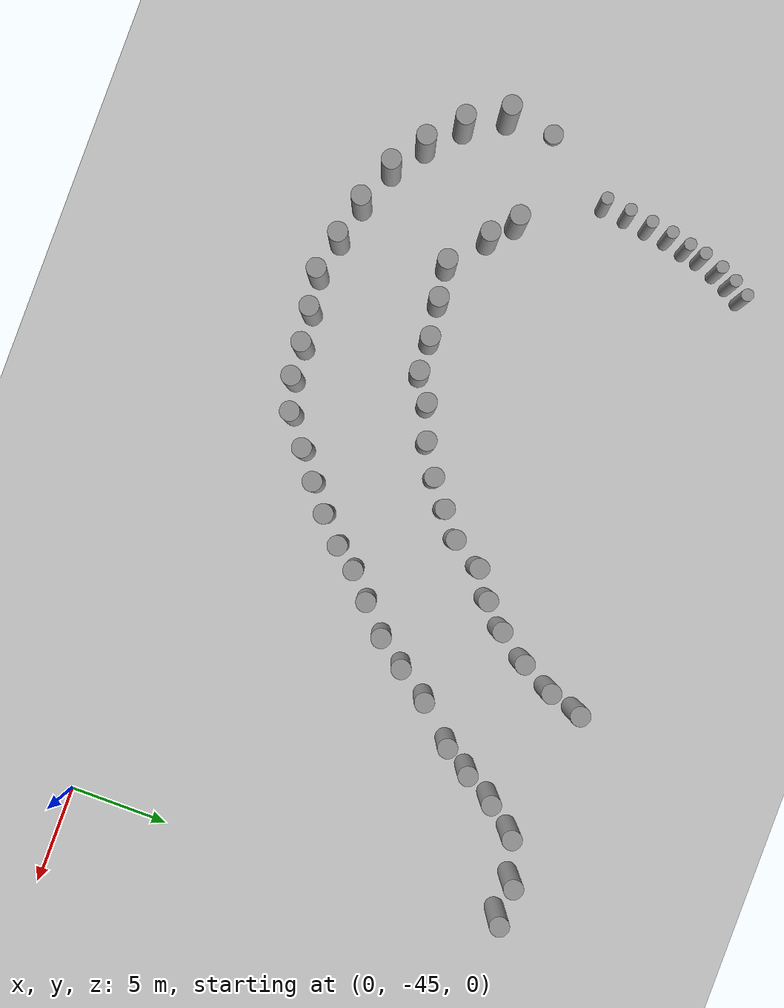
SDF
<sdf version="1.7">
 <world name="default">
  <model name="ground_plane">
   <static>1</static>
   <link name="link">
    <collision name="collision">
     <geometry><plane><normal>0 0 1</normal><size>100 100</size></plane></geometry>
     <surface>
      <contact><collide_bitmask>65535</collide_bitmask></contact>
      <friction><ode><mu>100</mu><mu2>50</mu2></ode></friction>
     </surface>
    </collision>
    <visual name="visual">
     <cast_shadows>0</cast_shadows>
     <geometry><plane><normal>0 0 1</normal><size>100 100</size></plane></geometry>
     <material>
      <script><uri>file://media/materials/scripts/gazebo.material</uri><name>Gazebo/Grey</name></script>
     </material>
    </visual>
   </link>
  </model>
  <model name="unit_cylinder">
   <pose>-39.2193 -33.7242 0.146396 0 -0 0</pose>
   <link name="link">
    <inertial>
     <mass>1</mass>
     <inertia><ixx>0.145833</ixx><ixy>0</ixy><ixz>0</ixz><iyy>0.145833</iyy><iyz>0</iyz><izz>0.125</izz></inertia>
    </inertial>
    <collision name="collision">
     <geometry><cylinder><radius>0.5</radius><length>0.292792</length></cylinder></geometry>
    </collision>
    <visual name="visual">
     <geometry><cylinder><radius>0.5</radius><length>0.292792</length></cylinder></geometry>
     <material>
      <script><name>Gazebo/Grey</name><uri>file://media/materials/scripts/gazebo.material</uri></script>
     </material>
    </visual>
   </link>
  </model>
  <model name="unit_cylinder_clone">
   <pose>-34.1012 -33.9397 1.7077 0 -0 -2.2e-05</pose>
   <link name="link">
    <inertial>
     <mass>1</mass>
     <inertia><ixx>0.145833</ixx><ixy>0</ixy><ixz>0</ixz><iyy>0.145833</iyy><iyz>0</iyz><izz>0.125</izz></inertia>
    </inertial>
    <collision name="collision">
     <geometry><cylinder><radius>0.5</radius><length>3.4154</length></cylinder></geometry>
    </collision>
    <visual name="visual">
     <geometry><cylinder><radius>0.5</radius><length>3.4154</length></cylinder></geometry>
     <material>
      <script><name>Gazebo/Grey</name><uri>file://media/materials/scripts/gazebo.material</uri></script>
     </material>
    </visual>
   </link>
  </model>
  <model name="unit_cylinder_clone_0">
   <pose>-38.9005 -36.1347 1.7077 0 -0 -3.1e-05</pose>
   <link name="link">
    <inertial>
     <mass>1</mass>
     <inertia><ixx>0.145833</ixx><ixy>0</ixy><ixz>0</ixz><iyy>0.145833</iyy><iyz>0</iyz><izz>0.125</izz></inertia>
    </inertial>
    <collision name="collision">
     <geometry><cylinder><radius>0.5</radius><length>3.4154</length></cylinder></geometry>
    </collision>
    <visual name="visual">
     <geometry><cylinder><radius>0.5</radius><length>3.4154</length></cylinder></geometry>
     <material>
      <script><name>Gazebo/Grey</name><uri>file://media/materials/scripts/gazebo.material</uri></script>
     </material>
    </visual>
   </link>
  </model>
  <model name="unit_cylinder_clone_0_clone">
   <pose>-37.7006 -38.0418 1.7077 0 -0 -3.1e-05</pose>
   <link name="link">
    <inertial>
     <mass>1</mass>
     <inertia><ixx>0.145833</ixx><ixy>0</ixy><ixz>0</ixz><iyy>0.145833</iyy><iyz>0</iyz><izz>0.125</izz></inertia>
    </inertial>
    <collision name="collision">
     <geometry><cylinder><radius>0.5</radius><length>3.4154</length></cylinder></geometry>
    </collision>
    <visual name="visual">
     <geometry><cylinder><radius>0.5</radius><length>3.4154</length></cylinder></geometry>
     <material>
      <script><name>Gazebo/Grey</name><uri>file://media/materials/scripts/gazebo.material</uri></script>
     </material>
    </visual>
   </link>
  </model>
  <model name="unit_cylinder_clone_0_clone_0">
   <pose>-36.1409 -39.4786 1.7077 0 -0 -1.9e-05</pose>
   <link name="link">
    <inertial>
     <mass>1</mass>
     <inertia><ixx>0.145833</ixx><ixy>0</ixy><ixz>0</ixz><iyy>0.145833</iyy><iyz>0</iyz><izz>0.125</izz></inertia>
    </inertial>
    <collision name="collision">
     <geometry><cylinder><radius>0.5</radius><length>3.4154</length></cylinder></geometry>
    </collision>
    <visual name="visual">
     <geometry><cylinder><radius>0.5</radius><length>3.4154</length></cylinder></geometry>
     <material>
      <script><name>Gazebo/Grey</name><uri>file://media/materials/scripts/gazebo.material</uri></script>
     </material>
    </visual>
   </link>
  </model>
  <model name="unit_cylinder_clone_0_clone_1">
   <pose>-32.8781 -34.9904 1.7077 0 -0 -1.7e-05</pose>
   <link name="link">
    <inertial>
     <mass>1</mass>
     <inertia><ixx>0.145833</ixx><ixy>0</ixy><ixz>0</ixz><iyy>0.145833</iyy><iyz>0</iyz><izz>0.125</izz></inertia>
    </inertial>
    <collision name="collision">
     <geometry><cylinder><radius>0.5</radius><length>3.4154</length></cylinder></geometry>
    </collision>
    <visual name="visual">
     <geometry><cylinder><radius>0.5</radius><length>3.4154</length></cylinder></geometry>
     <material>
      <script><name>Gazebo/Grey</name><uri>file://media/materials/scripts/gazebo.material</uri></script>
     </material>
    </visual>
   </link>
  </model>
  <model name="unit_cylinder_clone_0_clone_2">
   <pose>-30.9254 -36.4618 1.7077 0 -0 -3.1e-05</pose>
   <link name="link">
    <inertial>
     <mass>1</mass>
     <inertia><ixx>0.145833</ixx><ixy>0</ixy><ixz>0</ixz><iyy>0.145833</iyy><iyz>0</iyz><izz>0.125</izz></inertia>
    </inertial>
    <collision name="collision">
     <geometry><cylinder><radius>0.5</radius><length>3.4154</length></cylinder></geometry>
    </collision>
    <visual name="visual">
     <geometry><cylinder><radius>0.5</radius><length>3.4154</length></cylinder></geometry>
     <material>
      <script><name>Gazebo/Grey</name><uri>file://media/materials/scripts/gazebo.material</uri></script>
     </material>
    </visual>
   </link>
  </model>
  <model name="unit_cylinder_clone_0_clone_3">
   <pose>-34.4586 -40.6588 1.7077 0 -0 -2.2e-05</pose>
   <link name="link">
    <inertial>
     <mass>1</mass>
     <inertia><ixx>0.145833</ixx><ixy>0</ixy><ixz>0</ixz><iyy>0.145833</iyy><iyz>0</iyz><izz>0.125</izz></inertia>
    </inertial>
    <collision name="collision">
     <geometry><cylinder><radius>0.5</radius><length>3.4154</length></cylinder></geometry>
    </collision>
    <visual name="visual">
     <geometry><cylinder><radius>0.5</radius><length>3.4154</length></cylinder></geometry>
     <material>
      <script><name>Gazebo/Grey</name><uri>file://media/materials/scripts/gazebo.material</uri></script>
     </material>
    </visual>
   </link>
  </model>
  <model name="unit_cylinder_clone_0_clone_4">
   <pose>-32.3305 -41.4258 1.7077 0 -0 -2.3e-05</pose>
   <link name="link">
    <inertial>
     <mass>1</mass>
     <inertia><ixx>0.145833</ixx><ixy>0</ixy><ixz>0</ixz><iyy>0.145833</iyy><iyz>0</iyz><izz>0.125</izz></inertia>
    </inertial>
    <collision name="collision">
     <geometry><cylinder><radius>0.5</radius><length>3.4154</length></cylinder></geometry>
    </collision>
    <visual name="visual">
     <geometry><cylinder><radius>0.5</radius><length>3.4154</length></cylinder></geometry>
     <material>
      <script><name>Gazebo/Grey</name><uri>file://media/materials/scripts/gazebo.material</uri></script>
     </material>
    </visual>
   </link>
  </model>
  <model name="unit_cylinder_clone_0_clone_5">
   <pose>-30.3061 -41.8642 1.7077 0 -0 -1.5e-05</pose>
   <link name="link">
    <inertial>
     <mass>1</mass>
     <inertia><ixx>0.145833</ixx><ixy>0</ixy><ixz>0</ixz><iyy>0.145833</iyy><iyz>0</iyz><izz>0.125</izz></inertia>
    </inertial>
    <collision name="collision">
     <geometry><cylinder><radius>0.5</radius><length>3.4154</length></cylinder></geometry>
    </collision>
    <visual name="visual">
     <geometry><cylinder><radius>0.5</radius><length>3.4154</length></cylinder></geometry>
     <material>
      <script><name>Gazebo/Grey</name><uri>file://media/materials/scripts/gazebo.material</uri></script>
     </material>
    </visual>
   </link>
  </model>
  <model name="unit_cylinder_clone_0_clone_6">
   <pose>-29.0788 -36.2182 1.7077 0 -0 -1.5e-05</pose>
   <link name="link">
    <inertial>
     <mass>1</mass>
     <inertia><ixx>0.145833</ixx><ixy>0</ixy><ixz>0</ixz><iyy>0.145833</iyy><iyz>0</iyz><izz>0.125</izz></inertia>
    </inertial>
    <collision name="collision">
     <geometry><cylinder><radius>0.5</radius><length>3.4154</length></cylinder></geometry>
    </collision>
    <visual name="visual">
     <geometry><cylinder><radius>0.5</radius><length>3.4154</length></cylinder></geometry>
     <material>
      <script><name>Gazebo/Grey</name><uri>file://media/materials/scripts/gazebo.material</uri></script>
     </material>
    </visual>
   </link>
  </model>
  <model name="unit_cylinder_clone_0_clone_7">
   <pose>-27.1603 -35.9543 1.7077 0 -0 -1.5e-05</pose>
   <link name="link">
    <inertial>
     <mass>1</mass>
     <inertia><ixx>0.145833</ixx><ixy>0</ixy><ixz>0</ixz><iyy>0.145833</iyy><iyz>0</iyz><izz>0.125</izz></inertia>
    </inertial>
    <collision name="collision">
     <geometry><cylinder><radius>0.5</radius><length>3.4154</length></cylinder></geometry>
    </collision>
    <visual name="visual">
     <geometry><cylinder><radius>0.5</radius><length>3.4154</length></cylinder></geometry>
     <material>
      <script><name>Gazebo/Grey</name><uri>file://media/materials/scripts/gazebo.material</uri></script>
     </material>
    </visual>
   </link>
  </model>
  <model name="unit_cylinder_clone_0_clone_8">
   <pose>-28.3277 -42.2291 1.7077 0 -0 -1.5e-05</pose>
   <link name="link">
    <inertial>
     <mass>1</mass>
     <inertia><ixx>0.145833</ixx><ixy>0</ixy><ixz>0</ixz><iyy>0.145833</iyy><iyz>0</iyz><izz>0.125</izz></inertia>
    </inertial>
    <collision name="collision">
     <geometry><cylinder><radius>0.5</radius><length>3.4154</length></cylinder></geometry>
    </collision>
    <visual name="visual">
     <geometry><cylinder><radius>0.5</radius><length>3.4154</length></cylinder></geometry>
     <material>
      <script><name>Gazebo/Grey</name><uri>file://media/materials/scripts/gazebo.material</uri></script>
     </material>
    </visual>
   </link>
  </model>
  <model name="unit_cylinder_clone_0_clone_9">
   <pose>-26.4941 -41.9155 1.7077 0 -0 -3.1e-05</pose>
   <link name="link">
    <inertial>
     <mass>1</mass>
     <inertia><ixx>0.145833</ixx><ixy>0</ixy><ixz>0</ixz><iyy>0.145833</iyy><iyz>0</iyz><izz>0.125</izz></inertia>
    </inertial>
    <collision name="collision">
     <geometry><cylinder><radius>0.5</radius><length>3.4154</length></cylinder></geometry>
    </collision>
    <visual name="visual">
     <geometry><cylinder><radius>0.5</radius><length>3.4154</length></cylinder></geometry>
     <material>
      <script><name>Gazebo/Grey</name><uri>file://media/materials/scripts/gazebo.material</uri></script>
     </material>
    </visual>
   </link>
  </model>
  <model name="unit_cylinder_clone_0_clone_10">
   <pose>-25.4379 -35.8604 1.7077 0 -0 -1.5e-05</pose>
   <link name="link">
    <inertial>
     <mass>1</mass>
     <inertia><ixx>0.145833</ixx><ixy>0</ixy><ixz>0</ixz><iyy>0.145833</iyy><iyz>0</iyz><izz>0.125</izz></inertia>
    </inertial>
    <collision name="collision">
     <geometry><cylinder><radius>0.5</radius><length>3.4154</length></cylinder></geometry>
    </collision>
    <visual name="visual">
     <geometry><cylinder><radius>0.5</radius><length>3.4154</length></cylinder></geometry>
     <material>
      <script><name>Gazebo/Grey</name><uri>file://media/materials/scripts/gazebo.material</uri></script>
     </material>
    </visual>
   </link>
  </model>
  <model name="unit_cylinder_clone_0_clone_11">
   <pose>-24.7496 -41.6817 1.7077 0 -0 -1.5e-05</pose>
   <link name="link">
    <inertial>
     <mass>1</mass>
     <inertia><ixx>0.145833</ixx><ixy>0</ixy><ixz>0</ixz><iyy>0.145833</iyy><iyz>0</iyz><izz>0.125</izz></inertia>
    </inertial>
    <collision name="collision">
     <geometry><cylinder><radius>0.5</radius><length>3.4154</length></cylinder></geometry>
    </collision>
    <visual name="visual">
     <geometry><cylinder><radius>0.5</radius><length>3.4154</length></cylinder></geometry>
     <material>
      <script><name>Gazebo/Grey</name><uri>file://media/materials/scripts/gazebo.material</uri></script>
     </material>
    </visual>
   </link>
  </model>
  <model name="unit_cylinder_clone_0_clone_12">
   <pose>-24.1228 -34.9902 1.7077 0 -0 -3.1e-05</pose>
   <link name="link">
    <inertial>
     <mass>1</mass>
     <inertia><ixx>0.145833</ixx><ixy>0</ixy><ixz>0</ixz><iyy>0.145833</iyy><iyz>0</iyz><izz>0.125</izz></inertia>
    </inertial>
    <collision name="collision">
     <geometry><cylinder><radius>0.5</radius><length>3.4154</length></cylinder></geometry>
    </collision>
    <visual name="visual">
     <geometry><cylinder><radius>0.5</radius><length>3.4154</length></cylinder></geometry>
     <material>
      <script><name>Gazebo/Grey</name><uri>file://media/materials/scripts/gazebo.material</uri></script>
     </material>
    </visual>
   </link>
  </model>
  <model name="unit_cylinder_clone_0_clone_13">
   <pose>-23.0668 -41.5626 1.7077 0 -0 -1.5e-05</pose>
   <link name="link">
    <inertial>
     <mass>1</mass>
     <inertia><ixx>0.145833</ixx><ixy>0</ixy><ixz>0</ixz><iyy>0.145833</iyy><iyz>0</iyz><izz>0.125</izz></inertia>
    </inertial>
    <collision name="collision">
     <geometry><cylinder><radius>0.5</radius><length>3.4154</length></cylinder></geometry>
    </collision>
    <visual name="visual">
     <geometry><cylinder><radius>0.5</radius><length>3.4154</length></cylinder></geometry>
     <material>
      <script><name>Gazebo/Grey</name><uri>file://media/materials/scripts/gazebo.material</uri></script>
     </material>
    </visual>
   </link>
  </model>
  <model name="unit_cylinder_clone_0_clone_14">
   <pose>-21.4401 -41.0301 1.7077 0 -0 -1.5e-05</pose>
   <link name="link">
    <inertial>
     <mass>1</mass>
     <inertia><ixx>0.145833</ixx><ixy>0</ixy><ixz>0</ixz><iyy>0.145833</iyy><iyz>0</iyz><izz>0.125</izz></inertia>
    </inertial>
    <collision name="collision">
     <geometry><cylinder><radius>0.5</radius><length>3.4154</length></cylinder></geometry>
    </collision>
    <visual name="visual">
     <geometry><cylinder><radius>0.5</radius><length>3.4154</length></cylinder></geometry>
     <material>
      <script><name>Gazebo/Grey</name><uri>file://media/materials/scripts/gazebo.material</uri></script>
     </material>
    </visual>
   </link>
  </model>
  <model name="unit_cylinder_clone_0_clone_15">
   <pose>-22.3934 -34.3642 1.7077 0 -0 -1.5e-05</pose>
   <link name="link">
    <inertial>
     <mass>1</mass>
     <inertia><ixx>0.145833</ixx><ixy>0</ixy><ixz>0</ixz><iyy>0.145833</iyy><iyz>0</iyz><izz>0.125</izz></inertia>
    </inertial>
    <collision name="collision">
     <geometry><cylinder><radius>0.5</radius><length>3.4154</length></cylinder></geometry>
    </collision>
    <visual name="visual">
     <geometry><cylinder><radius>0.5</radius><length>3.4154</length></cylinder></geometry>
     <material>
      <script><name>Gazebo/Grey</name><uri>file://media/materials/scripts/gazebo.material</uri></script>
     </material>
    </visual>
   </link>
  </model>
  <model name="unit_cylinder_clone_0_clone_16">
   <pose>-19.9972 -39.8775 1.7077 0 -0 -1.5e-05</pose>
   <link name="link">
    <inertial>
     <mass>1</mass>
     <inertia><ixx>0.145833</ixx><ixy>0</ixy><ixz>0</ixz><iyy>0.145833</iyy><iyz>0</iyz><izz>0.125</izz></inertia>
    </inertial>
    <collision name="collision">
     <geometry><cylinder><radius>0.5</radius><length>3.4154</length></cylinder></geometry>
    </collision>
    <visual name="visual">
     <geometry><cylinder><radius>0.5</radius><length>3.4154</length></cylinder></geometry>
     <material>
      <script><name>Gazebo/Grey</name><uri>file://media/materials/scripts/gazebo.material</uri></script>
     </material>
    </visual>
   </link>
  </model>
  <model name="unit_cylinder_clone_0_clone_17">
   <pose>-18.657 -38.8392 1.7077 0 -0 -3.1e-05</pose>
   <link name="link">
    <inertial>
     <mass>1</mass>
     <inertia><ixx>0.145833</ixx><ixy>0</ixy><ixz>0</ixz><iyy>0.145833</iyy><iyz>0</iyz><izz>0.125</izz></inertia>
    </inertial>
    <collision name="collision">
     <geometry><cylinder><radius>0.5</radius><length>3.4154</length></cylinder></geometry>
    </collision>
    <visual name="visual">
     <geometry><cylinder><radius>0.5</radius><length>3.4154</length></cylinder></geometry>
     <material>
      <script><name>Gazebo/Grey</name><uri>file://media/materials/scripts/gazebo.material</uri></script>
     </material>
    </visual>
   </link>
  </model>
  <model name="unit_cylinder_clone_0_clone_18">
   <pose>-20.8912 -33.4203 1.7077 0 -0 -3.1e-05</pose>
   <link name="link">
    <inertial>
     <mass>1</mass>
     <inertia><ixx>0.145833</ixx><ixy>0</ixy><ixz>0</ixz><iyy>0.145833</iyy><iyz>0</iyz><izz>0.125</izz></inertia>
    </inertial>
    <collision name="collision">
     <geometry><cylinder><radius>0.5</radius><length>3.4154</length></cylinder></geometry>
    </collision>
    <visual name="visual">
     <geometry><cylinder><radius>0.5</radius><length>3.4154</length></cylinder></geometry>
     <material>
      <script><name>Gazebo/Grey</name><uri>file://media/materials/scripts/gazebo.material</uri></script>
     </material>
    </visual>
   </link>
  </model>
  <model name="unit_cylinder_clone_0_clone_19">
   <pose>-17.3958 -37.8043 1.7077 0 -0 -1.5e-05</pose>
   <link name="link">
    <inertial>
     <mass>1</mass>
     <inertia><ixx>0.145833</ixx><ixy>0</ixy><ixz>0</ixz><iyy>0.145833</iyy><iyz>0</iyz><izz>0.125</izz></inertia>
    </inertial>
    <collision name="collision">
     <geometry><cylinder><radius>0.5</radius><length>3.4154</length></cylinder></geometry>
    </collision>
    <visual name="visual">
     <geometry><cylinder><radius>0.5</radius><length>3.4154</length></cylinder></geometry>
     <material>
      <script><name>Gazebo/Grey</name><uri>file://media/materials/scripts/gazebo.material</uri></script>
     </material>
    </visual>
   </link>
  </model>
  <model name="unit_cylinder_clone_0_clone_20">
   <pose>-19.6384 -32.4055 1.7077 0 -0 -3e-05</pose>
   <link name="link">
    <inertial>
     <mass>1</mass>
     <inertia><ixx>0.145833</ixx><ixy>0</ixy><ixz>0</ixz><iyy>0.145833</iyy><iyz>0</iyz><izz>0.125</izz></inertia>
    </inertial>
    <collision name="collision">
     <geometry><cylinder><radius>0.5</radius><length>3.4154</length></cylinder></geometry>
    </collision>
    <visual name="visual">
     <geometry><cylinder><radius>0.5</radius><length>3.4154</length></cylinder></geometry>
     <material>
      <script><name>Gazebo/Grey</name><uri>file://media/materials/scripts/gazebo.material</uri></script>
     </material>
    </visual>
   </link>
  </model>
  <model name="unit_cylinder_clone_0_clone_21">
   <pose>-16.1906 -36.6426 1.7077 0 -0 -6e-06</pose>
   <link name="link">
    <inertial>
     <mass>1</mass>
     <inertia><ixx>0.145833</ixx><ixy>0</ixy><ixz>0</ixz><iyy>0.145833</iyy><iyz>0</iyz><izz>0.125</izz></inertia>
    </inertial>
    <collision name="collision">
     <geometry><cylinder><radius>0.5</radius><length>3.4154</length></cylinder></geometry>
    </collision>
    <visual name="visual">
     <geometry><cylinder><radius>0.5</radius><length>3.4154</length></cylinder></geometry>
     <material>
      <script><name>Gazebo/Grey</name><uri>file://media/materials/scripts/gazebo.material</uri></script>
     </material>
    </visual>
   </link>
  </model>
  <model name="unit_cylinder_clone_0_clone_22">
   <pose>-15.3446 -35.5243 1.7077 0 -0 -7e-06</pose>
   <link name="link">
    <inertial>
     <mass>1</mass>
     <inertia><ixx>0.145833</ixx><ixy>0</ixy><ixz>0</ixz><iyy>0.145833</iyy><iyz>0</iyz><izz>0.125</izz></inertia>
    </inertial>
    <collision name="collision">
     <geometry><cylinder><radius>0.5</radius><length>3.4154</length></cylinder></geometry>
    </collision>
    <visual name="visual">
     <geometry><cylinder><radius>0.5</radius><length>3.4154</length></cylinder></geometry>
     <material>
      <script><name>Gazebo/Grey</name><uri>file://media/materials/scripts/gazebo.material</uri></script>
     </material>
    </visual>
   </link>
  </model>
  <model name="unit_cylinder_clone_0_clone_23">
   <pose>-18.432 -31.4004 1.7077 0 -0 -3.5e-05</pose>
   <link name="link">
    <inertial>
     <mass>1</mass>
     <inertia><ixx>0.145833</ixx><ixy>0</ixy><ixz>0</ixz><iyy>0.145833</iyy><iyz>0</iyz><izz>0.125</izz></inertia>
    </inertial>
    <collision name="collision">
     <geometry><cylinder><radius>0.5</radius><length>3.4154</length></cylinder></geometry>
    </collision>
    <visual name="visual">
     <geometry><cylinder><radius>0.5</radius><length>3.4154</length></cylinder></geometry>
     <material>
      <script><name>Gazebo/Grey</name><uri>file://media/materials/scripts/gazebo.material</uri></script>
     </material>
    </visual>
   </link>
  </model>
  <model name="unit_cylinder_clone_0_clone_24">
   <pose>-17.5365 -29.8651 1.7077 0 -0 -3.5e-05</pose>
   <link name="link">
    <inertial>
     <mass>1</mass>
     <inertia><ixx>0.145833</ixx><ixy>0</ixy><ixz>0</ixz><iyy>0.145833</iyy><iyz>0</iyz><izz>0.125</izz></inertia>
    </inertial>
    <collision name="collision">
     <geometry><cylinder><radius>0.5</radius><length>3.4154</length></cylinder></geometry>
    </collision>
    <visual name="visual">
     <geometry><cylinder><radius>0.5</radius><length>3.4154</length></cylinder></geometry>
     <material>
      <script><name>Gazebo/Grey</name><uri>file://media/materials/scripts/gazebo.material</uri></script>
     </material>
    </visual>
   </link>
  </model>
  <model name="unit_cylinder_clone_0_clone_25">
   <pose>-14.135 -34.4155 1.7077 0 -0 -1.8e-05</pose>
   <link name="link">
    <inertial>
     <mass>1</mass>
     <inertia><ixx>0.145833</ixx><ixy>0</ixy><ixz>0</ixz><iyy>0.145833</iyy><iyz>0</iyz><izz>0.125</izz></inertia>
    </inertial>
    <collision name="collision">
     <geometry><cylinder><radius>0.5</radius><length>3.4154</length></cylinder></geometry>
    </collision>
    <visual name="visual">
     <geometry><cylinder><radius>0.5</radius><length>3.4154</length></cylinder></geometry>
     <material>
      <script><name>Gazebo/Grey</name><uri>file://media/materials/scripts/gazebo.material</uri></script>
     </material>
    </visual>
   </link>
  </model>
  <model name="unit_cylinder_clone_0_clone_26">
   <pose>-12.7615 -33.134 1.7077 0 -0 -1.8e-05</pose>
   <link name="link">
    <inertial>
     <mass>1</mass>
     <inertia><ixx>0.145833</ixx><ixy>0</ixy><ixz>0</ixz><iyy>0.145833</iyy><iyz>0</iyz><izz>0.125</izz></inertia>
    </inertial>
    <collision name="collision">
     <geometry><cylinder><radius>0.5</radius><length>3.4154</length></cylinder></geometry>
    </collision>
    <visual name="visual">
     <geometry><cylinder><radius>0.5</radius><length>3.4154</length></cylinder></geometry>
     <material>
      <script><name>Gazebo/Grey</name><uri>file://media/materials/scripts/gazebo.material</uri></script>
     </material>
    </visual>
   </link>
  </model>
  <model name="unit_cylinder_clone_0_clone_27">
   <pose>-11.7056 -31.7164 1.7077 0 -0 -1.1e-05</pose>
   <link name="link">
    <inertial>
     <mass>1</mass>
     <inertia><ixx>0.145833</ixx><ixy>0</ixy><ixz>0</ixz><iyy>0.145833</iyy><iyz>0</iyz><izz>0.125</izz></inertia>
    </inertial>
    <collision name="collision">
     <geometry><cylinder><radius>0.5</radius><length>3.4154</length></cylinder></geometry>
    </collision>
    <visual name="visual">
     <geometry><cylinder><radius>0.5</radius><length>3.4154</length></cylinder></geometry>
     <material>
      <script><name>Gazebo/Grey</name><uri>file://media/materials/scripts/gazebo.material</uri></script>
     </material>
    </visual>
   </link>
  </model>
  <model name="unit_cylinder_clone_0_clone_28">
   <pose>-10.5947 -30.1055 1.7077 0 -0 -2.6e-05</pose>
   <link name="link">
    <inertial>
     <mass>1</mass>
     <inertia><ixx>0.145833</ixx><ixy>0</ixy><ixz>0</ixz><iyy>0.145833</iyy><iyz>0</iyz><izz>0.125</izz></inertia>
    </inertial>
    <collision name="collision">
     <geometry><cylinder><radius>0.5</radius><length>3.4154</length></cylinder></geometry>
    </collision>
    <visual name="visual">
     <geometry><cylinder><radius>0.5</radius><length>3.4154</length></cylinder></geometry>
     <material>
      <script><name>Gazebo/Grey</name><uri>file://media/materials/scripts/gazebo.material</uri></script>
     </material>
    </visual>
   </link>
  </model>
  <model name="unit_cylinder_clone_0_clone_29">
   <pose>-8.92083 -28.3016 1.7077 0 -0 -7e-06</pose>
   <link name="link">
    <inertial>
     <mass>1</mass>
     <inertia><ixx>0.145833</ixx><ixy>0</ixy><ixz>0</ixz><iyy>0.145833</iyy><iyz>0</iyz><izz>0.125</izz></inertia>
    </inertial>
    <collision name="collision">
     <geometry><cylinder><radius>0.5</radius><length>3.4154</length></cylinder></geometry>
    </collision>
    <visual name="visual">
     <geometry><cylinder><radius>0.5</radius><length>3.4154</length></cylinder></geometry>
     <material>
      <script><name>Gazebo/Grey</name><uri>file://media/materials/scripts/gazebo.material</uri></script>
     </material>
    </visual>
   </link>
  </model>
  <model name="unit_cylinder_clone_0_clone_30">
   <pose>-16.2133 -28.921 1.7077 0 -0 -9e-06</pose>
   <link name="link">
    <inertial>
     <mass>1</mass>
     <inertia><ixx>0.145833</ixx><ixy>0</ixy><ixz>0</ixz><iyy>0.145833</iyy><iyz>0</iyz><izz>0.125</izz></inertia>
    </inertial>
    <collision name="collision">
     <geometry><cylinder><radius>0.5</radius><length>3.4154</length></cylinder></geometry>
    </collision>
    <visual name="visual">
     <geometry><cylinder><radius>0.5</radius><length>3.4154</length></cylinder></geometry>
     <material>
      <script><name>Gazebo/Grey</name><uri>file://media/materials/scripts/gazebo.material</uri></script>
     </material>
    </visual>
   </link>
  </model>
  <model name="unit_cylinder_clone_0_clone_31">
   <pose>-15.0737 -27.7686 1.7077 0 -0 -7e-06</pose>
   <link name="link">
    <inertial>
     <mass>1</mass>
     <inertia><ixx>0.145833</ixx><ixy>0</ixy><ixz>0</ixz><iyy>0.145833</iyy><iyz>0</iyz><izz>0.125</izz></inertia>
    </inertial>
    <collision name="collision">
     <geometry><cylinder><radius>0.5</radius><length>3.4154</length></cylinder></geometry>
    </collision>
    <visual name="visual">
     <geometry><cylinder><radius>0.5</radius><length>3.4154</length></cylinder></geometry>
     <material>
      <script><name>Gazebo/Grey</name><uri>file://media/materials/scripts/gazebo.material</uri></script>
     </material>
    </visual>
   </link>
  </model>
  <model name="unit_cylinder_clone_0_clone_32">
   <pose>-13.9781 -26.2226 1.7077 0 -0 -7e-06</pose>
   <link name="link">
    <inertial>
     <mass>1</mass>
     <inertia><ixx>0.145833</ixx><ixy>0</ixy><ixz>0</ixz><iyy>0.145833</iyy><iyz>0</iyz><izz>0.125</izz></inertia>
    </inertial>
    <collision name="collision">
     <geometry><cylinder><radius>0.5</radius><length>3.4154</length></cylinder></geometry>
    </collision>
    <visual name="visual">
     <geometry><cylinder><radius>0.5</radius><length>3.4154</length></cylinder></geometry>
     <material>
      <script><name>Gazebo/Grey</name><uri>file://media/materials/scripts/gazebo.material</uri></script>
     </material>
    </visual>
   </link>
  </model>
  <model name="unit_cylinder_clone_0_clone_33">
   <pose>-13.1083 -24.5379 1.7077 0 -0 -2.6e-05</pose>
   <link name="link">
    <inertial>
     <mass>1</mass>
     <inertia><ixx>0.145833</ixx><ixy>0</ixy><ixz>0</ixz><iyy>0.145833</iyy><iyz>0</iyz><izz>0.125</izz></inertia>
    </inertial>
    <collision name="collision">
     <geometry><cylinder><radius>0.5</radius><length>3.4154</length></cylinder></geometry>
    </collision>
    <visual name="visual">
     <geometry><cylinder><radius>0.5</radius><length>3.4154</length></cylinder></geometry>
     <material>
      <script><name>Gazebo/Grey</name><uri>file://media/materials/scripts/gazebo.material</uri></script>
     </material>
    </visual>
   </link>
  </model>
  <model name="unit_cylinder_clone_0_clone_34">
   <pose>-12.5767 -22.8633 1.7077 -0 -0 -0.001813</pose>
   <link name="link">
    <inertial>
     <mass>1</mass>
     <inertia><ixx>0.145833</ixx><ixy>0</ixy><ixz>0</ixz><iyy>0.145833</iyy><iyz>0</iyz><izz>0.125</izz></inertia>
    </inertial>
    <collision name="collision">
     <geometry><cylinder><radius>0.5</radius><length>3.4154</length></cylinder></geometry>
    </collision>
    <visual name="visual">
     <geometry><cylinder><radius>0.5</radius><length>3.4154</length></cylinder></geometry>
     <material>
      <script><name>Gazebo/Grey</name><uri>file://media/materials/scripts/gazebo.material</uri></script>
     </material>
    </visual>
   </link>
  </model>
  <model name="unit_cylinder_clone_0_clone_35">
   <pose>-8.01693 -26.923 1.7077 0 -0 -1.7e-05</pose>
   <link name="link">
    <inertial>
     <mass>1</mass>
     <inertia><ixx>0.145833</ixx><ixy>0</ixy><ixz>0</ixz><iyy>0.145833</iyy><iyz>0</iyz><izz>0.125</izz></inertia>
    </inertial>
    <collision name="collision">
     <geometry><cylinder><radius>0.5</radius><length>3.4154</length></cylinder></geometry>
    </collision>
    <visual name="visual">
     <geometry><cylinder><radius>0.5</radius><length>3.4154</length></cylinder></geometry>
     <material>
      <script><name>Gazebo/Grey</name><uri>file://media/materials/scripts/gazebo.material</uri></script>
     </material>
    </visual>
   </link>
  </model>
  <model name="unit_cylinder_clone_0_clone_36">
   <pose>-7.09433 -25.3866 1.7077 0 -0 -2.3e-05</pose>
   <link name="link">
    <inertial>
     <mass>1</mass>
     <inertia><ixx>0.145833</ixx><ixy>0</ixy><ixz>0</ixz><iyy>0.145833</iyy><iyz>0</iyz><izz>0.125</izz></inertia>
    </inertial>
    <collision name="collision">
     <geometry><cylinder><radius>0.5</radius><length>3.4154</length></cylinder></geometry>
    </collision>
    <visual name="visual">
     <geometry><cylinder><radius>0.5</radius><length>3.4154</length></cylinder></geometry>
     <material>
      <script><name>Gazebo/Grey</name><uri>file://media/materials/scripts/gazebo.material</uri></script>
     </material>
    </visual>
   </link>
  </model>
  <model name="unit_cylinder_clone_0_clone_38">
   <pose>-5.87449 -23.8777 1.7077 0 -0 -2.3e-05</pose>
   <link name="link">
    <inertial>
     <mass>1</mass>
     <inertia><ixx>0.145833</ixx><ixy>0</ixy><ixz>0</ixz><iyy>0.145833</iyy><iyz>0</iyz><izz>0.125</izz></inertia>
    </inertial>
    <collision name="collision">
     <geometry><cylinder><radius>0.5</radius><length>3.4154</length></cylinder></geometry>
    </collision>
    <visual name="visual">
     <geometry><cylinder><radius>0.5</radius><length>3.4154</length></cylinder></geometry>
     <material>
      <script><name>Gazebo/Grey</name><uri>file://media/materials/scripts/gazebo.material</uri></script>
     </material>
    </visual>
   </link>
  </model>
  <model name="unit_cylinder_clone_0_clone_40">
   <pose>-3.69067 -22.991 1.7077 0 -0 -3.5e-05</pose>
   <link name="link">
    <inertial>
     <mass>1</mass>
     <inertia><ixx>0.145833</ixx><ixy>0</ixy><ixz>0</ixz><iyy>0.145833</iyy><iyz>0</iyz><izz>0.125</izz></inertia>
    </inertial>
    <collision name="collision">
     <geometry><cylinder><radius>0.5</radius><length>3.4154</length></cylinder></geometry>
    </collision>
    <visual name="visual">
     <geometry><cylinder><radius>0.5</radius><length>3.4154</length></cylinder></geometry>
     <material>
      <script><name>Gazebo/Grey</name><uri>file://media/materials/scripts/gazebo.material</uri></script>
     </material>
    </visual>
   </link>
  </model>
  <model name="unit_cylinder_clone_0_clone_41">
   <pose>-1.78617 -23.0066 1.7077 0 -0 -1.1e-05</pose>
   <link name="link">
    <inertial>
     <mass>1</mass>
     <inertia><ixx>0.145833</ixx><ixy>0</ixy><ixz>0</ixz><iyy>0.145833</iyy><iyz>0</iyz><izz>0.125</izz></inertia>
    </inertial>
    <collision name="collision">
     <geometry><cylinder><radius>0.5</radius><length>3.4154</length></cylinder></geometry>
    </collision>
    <visual name="visual">
     <geometry><cylinder><radius>0.5</radius><length>3.4154</length></cylinder></geometry>
     <material>
      <script><name>Gazebo/Grey</name><uri>file://media/materials/scripts/gazebo.material</uri></script>
     </material>
    </visual>
   </link>
  </model>
  <model name="unit_cylinder_0_clone_18">
   <pose>-34.4501 -22.2126 1.36387 0.035053 -0.003363 -0.057875</pose>
   <link name="link">
    <inertial>
     <mass>1</mass>
     <inertia><ixx>0.145833</ixx><ixy>0</ixy><ixz>0</ixz><iyy>0.145833</iyy><iyz>0</iyz><izz>0.125</izz></inertia>
    </inertial>
    <collision name="collision">
     <geometry><cylinder><radius>0.312533</radius><length>2.71094</length></cylinder></geometry>
    </collision>
    <visual name="visual">
     <geometry><cylinder><radius>0.312533</radius><length>2.71094</length></cylinder></geometry>
     <material>
      <script><name>Gazebo/Grey</name><uri>file://media/materials/scripts/gazebo.material</uri></script>
     </material>
    </visual>
   </link>
  </model>
  <model name="unit_cylinder_0_clone_19">
   <pose>-34.9176 -22.9866 1.36387 0.035053 -0.003363 -0.057875</pose>
   <link name="link">
    <inertial>
     <mass>1</mass>
     <inertia><ixx>0.145833</ixx><ixy>0</ixy><ixz>0</ixz><iyy>0.145833</iyy><iyz>0</iyz><izz>0.125</izz></inertia>
    </inertial>
    <collision name="collision">
     <geometry><cylinder><radius>0.312533</radius><length>2.71094</length></cylinder></geometry>
    </collision>
    <visual name="visual">
     <geometry><cylinder><radius>0.312533</radius><length>2.71094</length></cylinder></geometry>
     <material>
      <script><name>Gazebo/Grey</name><uri>file://media/materials/scripts/gazebo.material</uri></script>
     </material>
    </visual>
   </link>
  </model>
  <model name="unit_cylinder_0_clone_20">
   <pose>-35.3083 -23.8205 1.36387 0.035053 -0.003363 -0.057875</pose>
   <link name="link">
    <inertial>
     <mass>1</mass>
     <inertia><ixx>0.145833</ixx><ixy>0</ixy><ixz>0</ixz><iyy>0.145833</iyy><iyz>0</iyz><izz>0.125</izz></inertia>
    </inertial>
    <collision name="collision">
     <geometry><cylinder><radius>0.312533</radius><length>2.71094</length></cylinder></geometry>
    </collision>
    <visual name="visual">
     <geometry><cylinder><radius>0.312533</radius><length>2.71094</length></cylinder></geometry>
     <material>
      <script><name>Gazebo/Grey</name><uri>file://media/materials/scripts/gazebo.material</uri></script>
     </material>
    </visual>
   </link>
  </model>
  <model name="unit_cylinder_0_clone_21">
   <pose>-35.6557 -24.8041 1.36387 0.035053 -0.003363 -0.057875</pose>
   <link name="link">
    <inertial>
     <mass>1</mass>
     <inertia><ixx>0.145833</ixx><ixy>0</ixy><ixz>0</ixz><iyy>0.145833</iyy><iyz>0</iyz><izz>0.125</izz></inertia>
    </inertial>
    <collision name="collision">
     <geometry><cylinder><radius>0.312533</radius><length>2.71094</length></cylinder></geometry>
    </collision>
    <visual name="visual">
     <geometry><cylinder><radius>0.312533</radius><length>2.71094</length></cylinder></geometry>
     <material>
      <script><name>Gazebo/Grey</name><uri>file://media/materials/scripts/gazebo.material</uri></script>
     </material>
    </visual>
   </link>
  </model>
  <model name="unit_cylinder_0_clone_22">
   <pose>-35.8041 -25.6573 1.36387 0.035053 -0.003363 -0.057875</pose>
   <link name="link">
    <inertial>
     <mass>1</mass>
     <inertia><ixx>0.145833</ixx><ixy>0</ixy><ixz>0</ixz><iyy>0.145833</iyy><iyz>0</iyz><izz>0.125</izz></inertia>
    </inertial>
    <collision name="collision">
     <geometry><cylinder><radius>0.312533</radius><length>2.71094</length></cylinder></geometry>
    </collision>
    <visual name="visual">
     <geometry><cylinder><radius>0.312533</radius><length>2.71094</length></cylinder></geometry>
     <material>
      <script><name>Gazebo/Grey</name><uri>file://media/materials/scripts/gazebo.material</uri></script>
     </material>
    </visual>
   </link>
  </model>
  <model name="unit_cylinder_0_clone_23">
   <pose>-36.0464 -26.6653 1.36387 0.035053 -0.003363 -0.057875</pose>
   <link name="link">
    <inertial>
     <mass>1</mass>
     <inertia><ixx>0.145833</ixx><ixy>0</ixy><ixz>0</ixz><iyy>0.145833</iyy><iyz>0</iyz><izz>0.125</izz></inertia>
    </inertial>
    <collision name="collision">
     <geometry><cylinder><radius>0.312533</radius><length>2.71094</length></cylinder></geometry>
    </collision>
    <visual name="visual">
     <geometry><cylinder><radius>0.312533</radius><length>2.71094</length></cylinder></geometry>
     <material>
      <script><name>Gazebo/Grey</name><uri>file://media/materials/scripts/gazebo.material</uri></script>
     </material>
    </visual>
   </link>
  </model>
  <model name="unit_cylinder_0_clone_24">
   <pose>-36.1886 -27.7632 1.36387 0.035053 -0.003363 -0.057875</pose>
   <link name="link">
    <inertial>
     <mass>1</mass>
     <inertia><ixx>0.145833</ixx><ixy>0</ixy><ixz>0</ixz><iyy>0.145833</iyy><iyz>0</iyz><izz>0.125</izz></inertia>
    </inertial>
    <collision name="collision">
     <geometry><cylinder><radius>0.312533</radius><length>2.71094</length></cylinder></geometry>
    </collision>
    <visual name="visual">
     <geometry><cylinder><radius>0.312533</radius><length>2.71094</length></cylinder></geometry>
     <material>
      <script><name>Gazebo/Grey</name><uri>file://media/materials/scripts/gazebo.material</uri></script>
     </material>
    </visual>
   </link>
  </model>
  <model name="unit_cylinder_0_clone_25">
   <pose>-36.363 -28.9389 1.36387 0.035053 -0.003363 -0.057875</pose>
   <link name="link">
    <inertial>
     <mass>1</mass>
     <inertia><ixx>0.145833</ixx><ixy>0</ixy><ixz>0</ixz><iyy>0.145833</iyy><iyz>0</iyz><izz>0.125</izz></inertia>
    </inertial>
    <collision name="collision">
     <geometry><cylinder><radius>0.312533</radius><length>2.71094</length></cylinder></geometry>
    </collision>
    <visual name="visual">
     <geometry><cylinder><radius>0.312533</radius><length>2.71094</length></cylinder></geometry>
     <material>
      <script><name>Gazebo/Grey</name><uri>file://media/materials/scripts/gazebo.material</uri></script>
     </material>
    </visual>
   </link>
  </model>
  <model name="unit_cylinder_0_clone_26">
   <pose>-36.49 -30.1992 1.36387 0.035053 -0.003363 -0.057875</pose>
   <link name="link">
    <inertial>
     <mass>1</mass>
     <inertia><ixx>0.145833</ixx><ixy>0</ixy><ixz>0</ixz><iyy>0.145833</iyy><iyz>0</iyz><izz>0.125</izz></inertia>
    </inertial>
    <collision name="collision">
     <geometry><cylinder><radius>0.312533</radius><length>2.71094</length></cylinder></geometry>
    </collision>
    <visual name="visual">
     <geometry><cylinder><radius>0.312533</radius><length>2.71094</length></cylinder></geometry>
     <material>
      <script><name>Gazebo/Grey</name><uri>file://media/materials/scripts/gazebo.material</uri></script>
     </material>
    </visual>
   </link>
  </model>
 </world>
</sdf>
